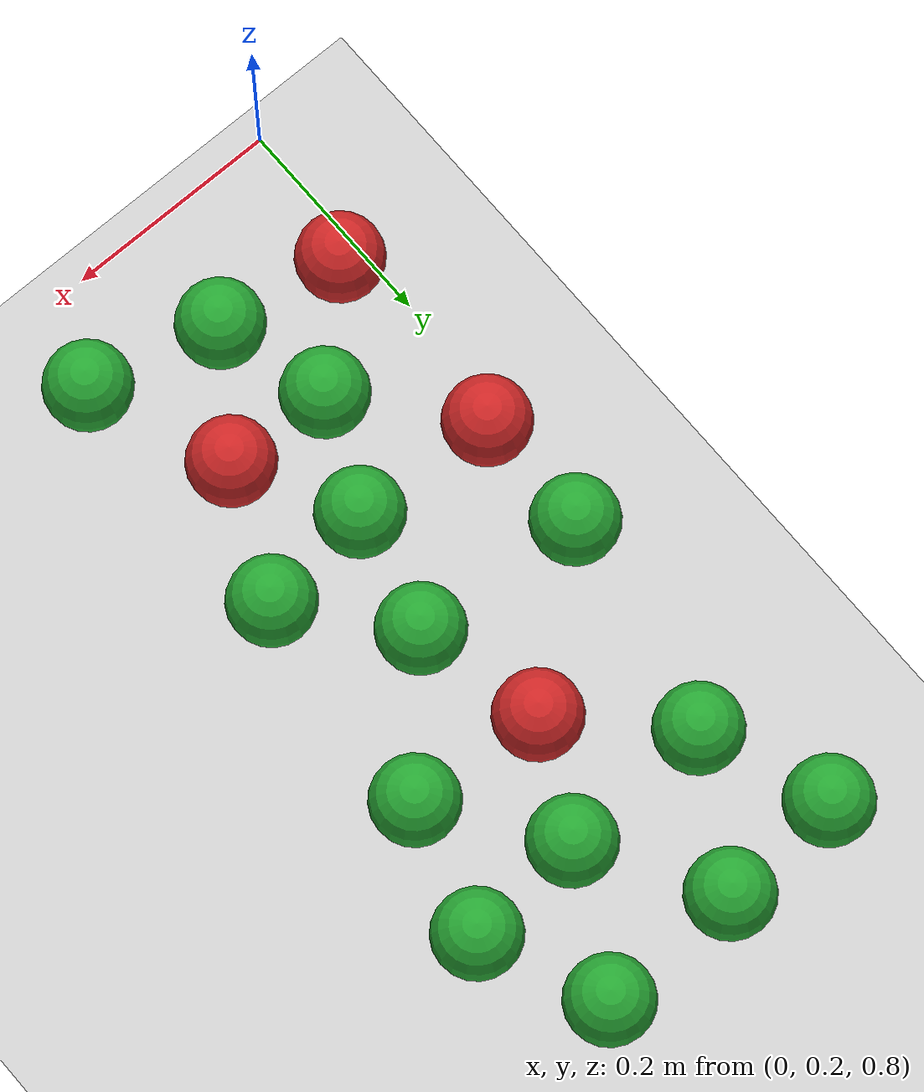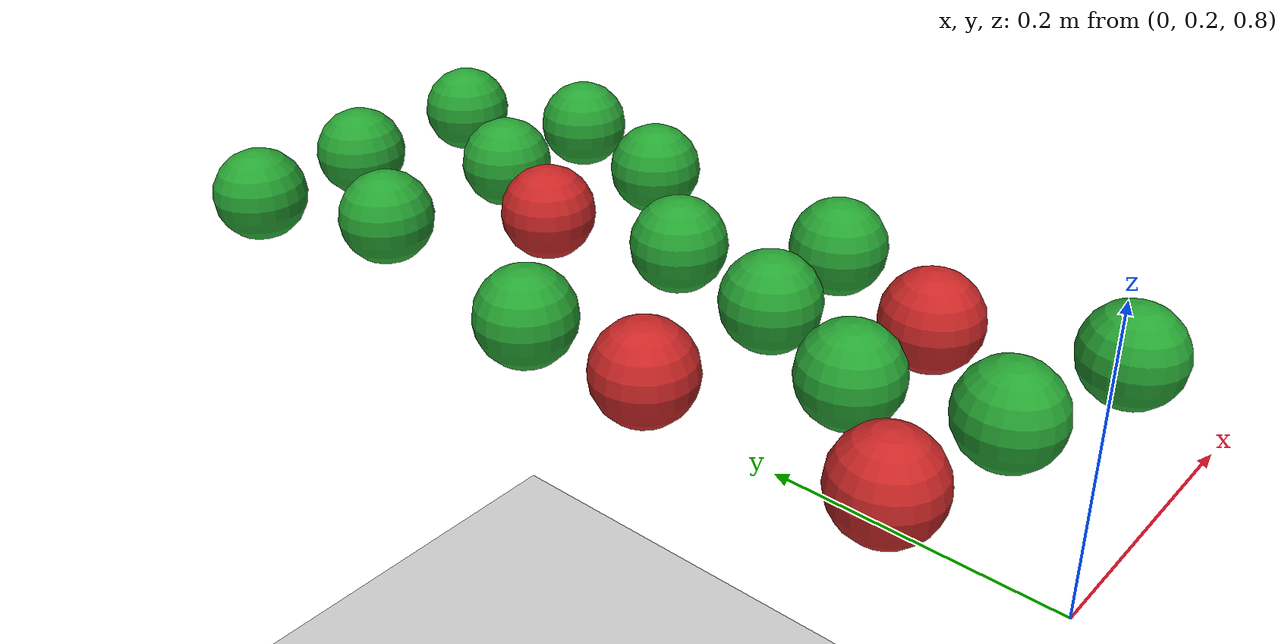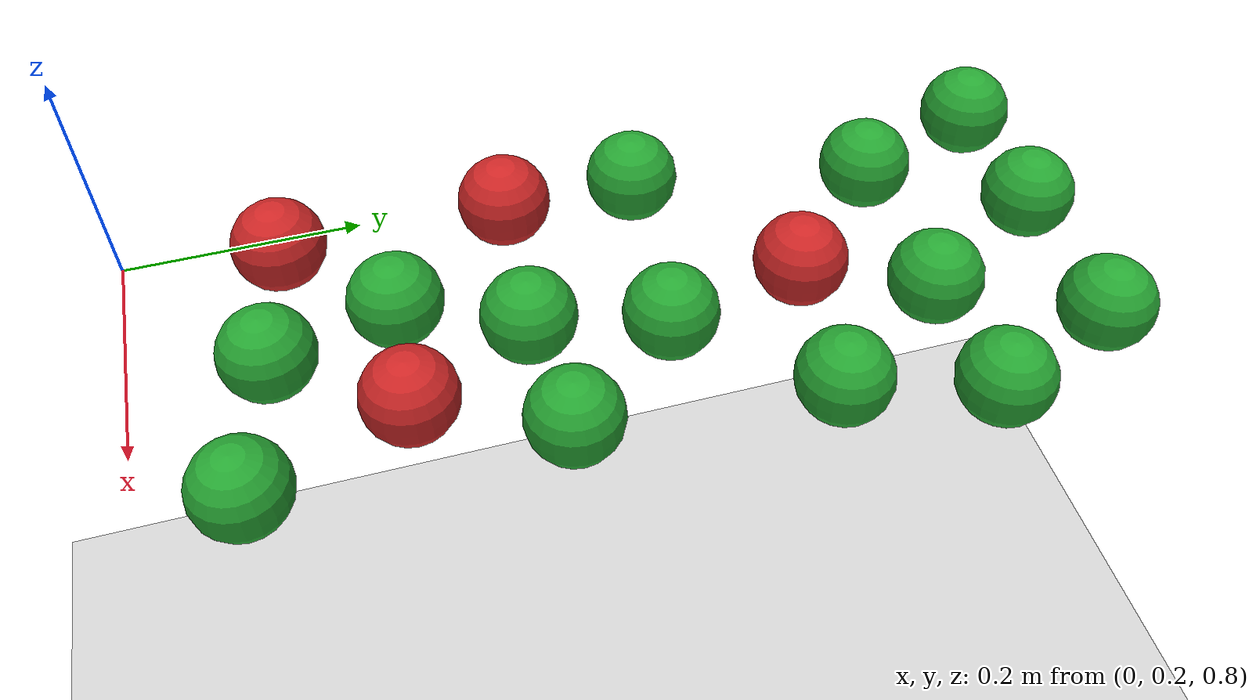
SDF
<sdf version="1.6">
 <world name="default">
  <model name="ground_plane">
   <static>1</static>
   <link name="link">
    <collision name="collision">
     <geometry><plane><normal>0 0 1</normal><size>100 100</size></plane></geometry>
     <surface><friction><ode><mu>100</mu><mu2>50</mu2></ode></friction></surface>
    </collision>
    <visual name="visual">
     <cast_shadows>0</cast_shadows>
     <geometry><plane><normal>0 0 1</normal><size>100 100</size></plane></geometry>
     <material>
      <script><uri>file://media/materials/scripts/gazebo.material</uri><name>Gazebo/Grey</name></script>
     </material>
    </visual>
   </link>
  </model>
  <model name="green_apple_clone_4">
   <link name="link">
    <inertial>
     <mass>1</mass>
     <inertia><ixx>0.1</ixx><ixy>0</ixy><ixz>0</ixz><iyy>0.1</iyy><iyz>0</iyz><izz>0.1</izz></inertia>
    </inertial>
    <visual name="visual">
     <geometry><sphere><radius>0.04</radius></sphere></geometry>
     <material>
      <script><name>Gazebo/Green</name><uri>file://media/materials/scripts/gazebo.material</uri></script>
      <shader type="vertex"><normal_map>__default__</normal_map></shader>
      <ambient>0 1 0 1</ambient>
      <diffuse>0.7 0.7 0.7 1</diffuse>
      <specular>0.01 0.01 0.01 1</specular>
      <emissive>0 0 0 1</emissive>
     </material>
    </visual>
    <collision name="collision">
     <geometry><sphere><radius>0.04</radius></sphere></geometry>
     <surface>
      <friction>
       <ode><mu>1</mu><mu2>1</mu2><fdir1>0 0 0</fdir1><slip1>0</slip1><slip2>0</slip2></ode>
       <torsional>
        <coefficient>1</coefficient>
        <patch_radius>0</patch_radius>
        <surface_radius>0</surface_radius>
        <use_patch_radius>1</use_patch_radius>
        <ode><slip>0</slip></ode>
       </torsional>
      </friction>
      <bounce><restitution_coefficient>0</restitution_coefficient><threshold>1e+06</threshold></bounce>
      <contact>
       <collide_without_contact>0</collide_without_contact>
       <collide_without_contact_bitmask>1</collide_without_contact_bitmask>
       <collide_bitmask>1</collide_bitmask>
       <ode>
        <soft_cfm>0</soft_cfm>
        <soft_erp>0.2</soft_erp>
        <kp>1e+13</kp>
        <kd>1</kd>
        <max_vel>0.01</max_vel>
        <min_depth>0</min_depth>
       </ode>
       <bullet>
        <split_impulse>1</split_impulse>
        <split_impulse_penetration_threshold>-0.01</split_impulse_penetration_threshold>
        <soft_cfm>0</soft_cfm>
        <soft_erp>0.2</soft_erp>
        <kp>1e+13</kp>
        <kd>1</kd>
       </bullet>
      </contact>
     </surface>
    </collision>
   </link>
   <static>0</static>
   <pose>0.016604 0.962257 0.815 0 -0 0</pose>
  </model>
  <model name="green_apple_clone_5">
   <link name="link">
    <inertial>
     <mass>1</mass>
     <inertia><ixx>0.1</ixx><ixy>0</ixy><ixz>0</ixz><iyy>0.1</iyy><iyz>0</iyz><izz>0.1</izz></inertia>
    </inertial>
    <visual name="visual">
     <geometry><sphere><radius>0.04</radius></sphere></geometry>
     <material>
      <script><name>Gazebo/Green</name><uri>file://media/materials/scripts/gazebo.material</uri></script>
      <shader type="vertex"><normal_map>__default__</normal_map></shader>
      <ambient>0 1 0 1</ambient>
      <diffuse>0.7 0.7 0.7 1</diffuse>
      <specular>0.01 0.01 0.01 1</specular>
      <emissive>0 0 0 1</emissive>
     </material>
    </visual>
    <collision name="collision">
     <geometry><sphere><radius>0.04</radius></sphere></geometry>
     <surface>
      <friction>
       <ode><mu>1</mu><mu2>1</mu2><fdir1>0 0 0</fdir1><slip1>0</slip1><slip2>0</slip2></ode>
       <torsional>
        <coefficient>1</coefficient>
        <patch_radius>0</patch_radius>
        <surface_radius>0</surface_radius>
        <use_patch_radius>1</use_patch_radius>
        <ode><slip>0</slip></ode>
       </torsional>
      </friction>
      <bounce><restitution_coefficient>0</restitution_coefficient><threshold>1e+06</threshold></bounce>
      <contact>
       <collide_without_contact>0</collide_without_contact>
       <collide_without_contact_bitmask>1</collide_without_contact_bitmask>
       <collide_bitmask>1</collide_bitmask>
       <ode>
        <soft_cfm>0</soft_cfm>
        <soft_erp>0.2</soft_erp>
        <kp>1e+13</kp>
        <kd>1</kd>
        <max_vel>0.01</max_vel>
        <min_depth>0</min_depth>
       </ode>
       <bullet>
        <split_impulse>1</split_impulse>
        <split_impulse_penetration_threshold>-0.01</split_impulse_penetration_threshold>
        <soft_cfm>0</soft_cfm>
        <soft_erp>0.2</soft_erp>
        <kp>1e+13</kp>
        <kd>1</kd>
       </bullet>
      </contact>
     </surface>
    </collision>
   </link>
   <static>0</static>
   <pose>0.131703 0.968731 0.815 0 -0 0</pose>
  </model>
  <model name="green_apple_clone_6">
   <link name="link">
    <inertial>
     <mass>1</mass>
     <inertia><ixx>0.1</ixx><ixy>0</ixy><ixz>0</ixz><iyy>0.1</iyy><iyz>0</iyz><izz>0.1</izz></inertia>
    </inertial>
    <visual name="visual">
     <geometry><sphere><radius>0.04</radius></sphere></geometry>
     <material>
      <script><name>Gazebo/Green</name><uri>file://media/materials/scripts/gazebo.material</uri></script>
      <shader type="vertex"><normal_map>__default__</normal_map></shader>
      <ambient>0 1 0 1</ambient>
      <diffuse>0.7 0.7 0.7 1</diffuse>
      <specular>0.01 0.01 0.01 1</specular>
      <emissive>0 0 0 1</emissive>
     </material>
    </visual>
    <collision name="collision">
     <geometry><sphere><radius>0.04</radius></sphere></geometry>
     <surface>
      <friction>
       <ode><mu>1</mu><mu2>1</mu2><fdir1>0 0 0</fdir1><slip1>0</slip1><slip2>0</slip2></ode>
       <torsional>
        <coefficient>1</coefficient>
        <patch_radius>0</patch_radius>
        <surface_radius>0</surface_radius>
        <use_patch_radius>1</use_patch_radius>
        <ode><slip>0</slip></ode>
       </torsional>
      </friction>
      <bounce><restitution_coefficient>0</restitution_coefficient><threshold>1e+06</threshold></bounce>
      <contact>
       <collide_without_contact>0</collide_without_contact>
       <collide_without_contact_bitmask>1</collide_without_contact_bitmask>
       <collide_bitmask>1</collide_bitmask>
       <ode>
        <soft_cfm>0</soft_cfm>
        <soft_erp>0.2</soft_erp>
        <kp>1e+13</kp>
        <kd>1</kd>
        <max_vel>0.01</max_vel>
        <min_depth>0</min_depth>
       </ode>
       <bullet>
        <split_impulse>1</split_impulse>
        <split_impulse_penetration_threshold>-0.01</split_impulse_penetration_threshold>
        <soft_cfm>0</soft_cfm>
        <soft_erp>0.2</soft_erp>
        <kp>1e+13</kp>
        <kd>1</kd>
       </bullet>
      </contact>
     </surface>
    </collision>
   </link>
   <static>0</static>
   <pose>0.26638 0.971637 0.815 0 -0 0</pose>
  </model>
  <model name="red_apple_clone_clone_1">
   <link name="link">
    <inertial>
     <mass>1</mass>
     <inertia><ixx>0.1</ixx><ixy>0</ixy><ixz>0</ixz><iyy>0.1</iyy><iyz>0</iyz><izz>0.1</izz></inertia>
    </inertial>
    <visual name="visual">
     <geometry><sphere><radius>0.04</radius></sphere></geometry>
     <material>
      <script><name>Gazebo/Red</name><uri>file://media/materials/scripts/gazebo.material</uri></script>
      <shader type="vertex"><normal_map>__default__</normal_map></shader>
      <ambient>1 0 0 1</ambient>
      <diffuse>0.7 0.7 0.7 1</diffuse>
      <specular>0.01 0.01 0.01 1</specular>
      <emissive>0 0 0 1</emissive>
     </material>
    </visual>
    <collision name="collision">
     <geometry><sphere><radius>0.04</radius></sphere></geometry>
     <surface>
      <friction>
       <ode><mu>1</mu><mu2>1</mu2><fdir1>0 0 0</fdir1><slip1>0</slip1><slip2>0</slip2></ode>
       <torsional>
        <coefficient>1</coefficient>
        <patch_radius>0</patch_radius>
        <surface_radius>0</surface_radius>
        <use_patch_radius>1</use_patch_radius>
        <ode><slip>0</slip></ode>
       </torsional>
      </friction>
      <bounce><restitution_coefficient>0</restitution_coefficient><threshold>1e+06</threshold></bounce>
      <contact>
       <collide_without_contact>0</collide_without_contact>
       <collide_without_contact_bitmask>1</collide_without_contact_bitmask>
       <collide_bitmask>1</collide_bitmask>
       <ode>
        <soft_cfm>0</soft_cfm>
        <soft_erp>0.2</soft_erp>
        <kp>1e+13</kp>
        <kd>1</kd>
        <max_vel>0.01</max_vel>
        <min_depth>0</min_depth>
       </ode>
       <bullet>
        <split_impulse>1</split_impulse>
        <split_impulse_penetration_threshold>-0.01</split_impulse_penetration_threshold>
        <soft_cfm>0</soft_cfm>
        <soft_erp>0.2</soft_erp>
        <kp>1e+13</kp>
        <kd>1</kd>
       </bullet>
      </contact>
     </surface>
    </collision>
   </link>
   <static>0</static>
   <pose>0.018462 0.524832 0.815 0 -0 0</pose>
  </model>
  <model name="red_apple_clone_clone_2">
   <link name="link">
    <inertial>
     <mass>1</mass>
     <inertia><ixx>0.1</ixx><ixy>0</ixy><ixz>0</ixz><iyy>0.1</iyy><iyz>0</iyz><izz>0.1</izz></inertia>
    </inertial>
    <visual name="visual">
     <geometry><sphere><radius>0.04</radius></sphere></geometry>
     <material>
      <script><name>Gazebo/Red</name><uri>file://media/materials/scripts/gazebo.material</uri></script>
      <shader type="vertex"><normal_map>__default__</normal_map></shader>
      <ambient>1 0 0 1</ambient>
      <diffuse>0.7 0.7 0.7 1</diffuse>
      <specular>0.01 0.01 0.01 1</specular>
      <emissive>0 0 0 1</emissive>
     </material>
    </visual>
    <collision name="collision">
     <geometry><sphere><radius>0.04</radius></sphere></geometry>
     <surface>
      <friction>
       <ode><mu>1</mu><mu2>1</mu2><fdir1>0 0 0</fdir1><slip1>0</slip1><slip2>0</slip2></ode>
       <torsional>
        <coefficient>1</coefficient>
        <patch_radius>0</patch_radius>
        <surface_radius>0</surface_radius>
        <use_patch_radius>1</use_patch_radius>
        <ode><slip>0</slip></ode>
       </torsional>
      </friction>
      <bounce><restitution_coefficient>0</restitution_coefficient><threshold>1e+06</threshold></bounce>
      <contact>
       <collide_without_contact>0</collide_without_contact>
       <collide_without_contact_bitmask>1</collide_without_contact_bitmask>
       <collide_bitmask>1</collide_bitmask>
       <ode>
        <soft_cfm>0</soft_cfm>
        <soft_erp>0.2</soft_erp>
        <kp>1e+13</kp>
        <kd>1</kd>
        <max_vel>0.01</max_vel>
        <min_depth>0</min_depth>
       </ode>
       <bullet>
        <split_impulse>1</split_impulse>
        <split_impulse_penetration_threshold>-0.01</split_impulse_penetration_threshold>
        <soft_cfm>0</soft_cfm>
        <soft_erp>0.2</soft_erp>
        <kp>1e+13</kp>
        <kd>1</kd>
       </bullet>
      </contact>
     </surface>
    </collision>
   </link>
   <static>0</static>
   <pose>0.153687 0.749229 0.815 0 -0 0</pose>
  </model>
  <model name="red_apple_clone_clone_3">
   <link name="link">
    <inertial>
     <mass>1</mass>
     <inertia><ixx>0.1</ixx><ixy>0</ixy><ixz>0</ixz><iyy>0.1</iyy><iyz>0</iyz><izz>0.1</izz></inertia>
    </inertial>
    <visual name="visual">
     <geometry><sphere><radius>0.04</radius></sphere></geometry>
     <material>
      <script><name>Gazebo/Red</name><uri>file://media/materials/scripts/gazebo.material</uri></script>
      <shader type="vertex"><normal_map>__default__</normal_map></shader>
      <ambient>1 0 0 1</ambient>
      <diffuse>0.7 0.7 0.7 1</diffuse>
      <specular>0.01 0.01 0.01 1</specular>
      <emissive>0 0 0 1</emissive>
     </material>
    </visual>
    <collision name="collision">
     <geometry><sphere><radius>0.04</radius></sphere></geometry>
     <surface>
      <friction>
       <ode><mu>1</mu><mu2>1</mu2><fdir1>0 0 0</fdir1><slip1>0</slip1><slip2>0</slip2></ode>
       <torsional>
        <coefficient>1</coefficient>
        <patch_radius>0</patch_radius>
        <surface_radius>0</surface_radius>
        <use_patch_radius>1</use_patch_radius>
        <ode><slip>0</slip></ode>
       </torsional>
      </friction>
      <bounce><restitution_coefficient>0</restitution_coefficient><threshold>1e+06</threshold></bounce>
      <contact>
       <collide_without_contact>0</collide_without_contact>
       <collide_without_contact_bitmask>1</collide_without_contact_bitmask>
       <collide_bitmask>1</collide_bitmask>
       <ode>
        <soft_cfm>0</soft_cfm>
        <soft_erp>0.2</soft_erp>
        <kp>1e+13</kp>
        <kd>1</kd>
        <max_vel>0.01</max_vel>
        <min_depth>0</min_depth>
       </ode>
       <bullet>
        <split_impulse>1</split_impulse>
        <split_impulse_penetration_threshold>-0.01</split_impulse_penetration_threshold>
        <soft_cfm>0</soft_cfm>
        <soft_erp>0.2</soft_erp>
        <kp>1e+13</kp>
        <kd>1</kd>
       </bullet>
      </contact>
     </surface>
    </collision>
   </link>
   <static>0</static>
   <pose>0.01934 0.330948 0.815 0 -0 0</pose>
  </model>
  <model name="red_apple_clone_clone_7">
   <link name="link">
    <inertial>
     <mass>1</mass>
     <inertia><ixx>0.1</ixx><ixy>0</ixy><ixz>0</ixz><iyy>0.1</iyy><iyz>0</iyz><izz>0.1</izz></inertia>
    </inertial>
    <visual name="visual">
     <geometry><sphere><radius>0.04</radius></sphere></geometry>
     <material>
      <script><name>Gazebo/Red</name><uri>file://media/materials/scripts/gazebo.material</uri></script>
      <shader type="vertex"><normal_map>__default__</normal_map></shader>
      <ambient>1 0 0 1</ambient>
      <diffuse>0.7 0.7 0.7 1</diffuse>
      <specular>0.01 0.01 0.01 1</specular>
      <emissive>0 0 0 1</emissive>
     </material>
    </visual>
    <collision name="collision">
     <geometry><sphere><radius>0.04</radius></sphere></geometry>
     <surface>
      <friction>
       <ode><mu>1</mu><mu2>1</mu2><fdir1>0 0 0</fdir1><slip1>0</slip1><slip2>0</slip2></ode>
       <torsional>
        <coefficient>1</coefficient>
        <patch_radius>0</patch_radius>
        <surface_radius>0</surface_radius>
        <use_patch_radius>1</use_patch_radius>
        <ode><slip>0</slip></ode>
       </torsional>
      </friction>
      <bounce><restitution_coefficient>0</restitution_coefficient><threshold>1e+06</threshold></bounce>
      <contact>
       <collide_without_contact>0</collide_without_contact>
       <collide_without_contact_bitmask>1</collide_without_contact_bitmask>
       <collide_bitmask>1</collide_bitmask>
       <ode>
        <soft_cfm>0</soft_cfm>
        <soft_erp>0.2</soft_erp>
        <kp>1e+13</kp>
        <kd>1</kd>
        <max_vel>0.01</max_vel>
        <min_depth>0</min_depth>
       </ode>
       <bullet>
        <split_impulse>1</split_impulse>
        <split_impulse_penetration_threshold>-0.01</split_impulse_penetration_threshold>
        <soft_cfm>0</soft_cfm>
        <soft_erp>0.2</soft_erp>
        <kp>1e+13</kp>
        <kd>1</kd>
       </bullet>
      </contact>
     </surface>
    </collision>
   </link>
   <static>0</static>
   <pose>0.20775 0.411852 0.815 0 -0 0</pose>
  </model>
  <model name="green_apple_clone_1_clone_0">
   <link name="link">
    <inertial>
     <mass>1</mass>
     <inertia><ixx>0.1</ixx><ixy>0</ixy><ixz>0</ixz><iyy>0.1</iyy><iyz>0</iyz><izz>0.1</izz></inertia>
    </inertial>
    <visual name="visual">
     <geometry><sphere><radius>0.04</radius></sphere></geometry>
     <material>
      <script><name>Gazebo/Green</name><uri>file://media/materials/scripts/gazebo.material</uri></script>
      <shader type="vertex"><normal_map>__default__</normal_map></shader>
      <ambient>0 1 0 1</ambient>
      <diffuse>0.7 0.7 0.7 1</diffuse>
      <specular>0.01 0.01 0.01 1</specular>
      <emissive>0 0 0 1</emissive>
     </material>
    </visual>
    <collision name="collision">
     <geometry><sphere><radius>0.04</radius></sphere></geometry>
     <surface>
      <friction>
       <ode><mu>1</mu><mu2>1</mu2><fdir1>0 0 0</fdir1><slip1>0</slip1><slip2>0</slip2></ode>
       <torsional>
        <coefficient>1</coefficient>
        <patch_radius>0</patch_radius>
        <surface_radius>0</surface_radius>
        <use_patch_radius>1</use_patch_radius>
        <ode><slip>0</slip></ode>
       </torsional>
      </friction>
      <bounce><restitution_coefficient>0</restitution_coefficient><threshold>1e+06</threshold></bounce>
      <contact>
       <collide_without_contact>0</collide_without_contact>
       <collide_without_contact_bitmask>1</collide_without_contact_bitmask>
       <collide_bitmask>1</collide_bitmask>
       <ode>
        <soft_cfm>0</soft_cfm>
        <soft_erp>0.2</soft_erp>
        <kp>1e+13</kp>
        <kd>1</kd>
        <max_vel>0.01</max_vel>
        <min_depth>0</min_depth>
       </ode>
       <bullet>
        <split_impulse>1</split_impulse>
        <split_impulse_penetration_threshold>-0.01</split_impulse_penetration_threshold>
        <soft_cfm>0</soft_cfm>
        <soft_erp>0.2</soft_erp>
        <kp>1e+13</kp>
        <kd>1</kd>
       </bullet>
      </contact>
     </surface>
    </collision>
   </link>
   <static>0</static>
   <pose>0.058794 0.845067 0.815 0 -0 0</pose>
  </model>
  <model name="green_apple_clone_1_clone_1">
   <link name="link">
    <inertial>
     <mass>1</mass>
     <inertia><ixx>0.1</ixx><ixy>0</ixy><ixz>0</ixz><iyy>0.1</iyy><iyz>0</iyz><izz>0.1</izz></inertia>
    </inertial>
    <visual name="visual">
     <geometry><sphere><radius>0.04</radius></sphere></geometry>
     <material>
      <script><name>Gazebo/Green</name><uri>file://media/materials/scripts/gazebo.material</uri></script>
      <shader type="vertex"><normal_map>__default__</normal_map></shader>
      <ambient>0 1 0 1</ambient>
      <diffuse>0.7 0.7 0.7 1</diffuse>
      <specular>0.01 0.01 0.01 1</specular>
      <emissive>0 0 0 1</emissive>
     </material>
    </visual>
    <collision name="collision">
     <geometry><sphere><radius>0.04</radius></sphere></geometry>
     <surface>
      <friction>
       <ode><mu>1</mu><mu2>1</mu2><fdir1>0 0 0</fdir1><slip1>0</slip1><slip2>0</slip2></ode>
       <torsional>
        <coefficient>1</coefficient>
        <patch_radius>0</patch_radius>
        <surface_radius>0</surface_radius>
        <use_patch_radius>1</use_patch_radius>
        <ode><slip>0</slip></ode>
       </torsional>
      </friction>
      <bounce><restitution_coefficient>0</restitution_coefficient><threshold>1e+06</threshold></bounce>
      <contact>
       <collide_without_contact>0</collide_without_contact>
       <collide_without_contact_bitmask>1</collide_without_contact_bitmask>
       <collide_bitmask>1</collide_bitmask>
       <ode>
        <soft_cfm>0</soft_cfm>
        <soft_erp>0.2</soft_erp>
        <kp>1e+13</kp>
        <kd>1</kd>
        <max_vel>0.01</max_vel>
        <min_depth>0</min_depth>
       </ode>
       <bullet>
        <split_impulse>1</split_impulse>
        <split_impulse_penetration_threshold>-0.01</split_impulse_penetration_threshold>
        <soft_cfm>0</soft_cfm>
        <soft_erp>0.2</soft_erp>
        <kp>1e+13</kp>
        <kd>1</kd>
       </bullet>
      </contact>
     </surface>
    </collision>
   </link>
   <static>0</static>
   <pose>0.20237 0.849751 0.815 0 -0 0</pose>
  </model>
  <model name="green_apple_clone_1_clone_2">
   <link name="link">
    <inertial>
     <mass>1</mass>
     <inertia><ixx>0.1</ixx><ixy>0</ixy><ixz>0</ixz><iyy>0.1</iyy><iyz>0</iyz><izz>0.1</izz></inertia>
    </inertial>
    <visual name="visual">
     <geometry><sphere><radius>0.04</radius></sphere></geometry>
     <material>
      <script><name>Gazebo/Green</name><uri>file://media/materials/scripts/gazebo.material</uri></script>
      <shader type="vertex"><normal_map>__default__</normal_map></shader>
      <ambient>0 1 0 1</ambient>
      <diffuse>0.7 0.7 0.7 1</diffuse>
      <specular>0.01 0.01 0.01 1</specular>
      <emissive>0 0 0 1</emissive>
     </material>
    </visual>
    <collision name="collision">
     <geometry><sphere><radius>0.04</radius></sphere></geometry>
     <surface>
      <friction>
       <ode><mu>1</mu><mu2>1</mu2><fdir1>0 0 0</fdir1><slip1>0</slip1><slip2>0</slip2></ode>
       <torsional>
        <coefficient>1</coefficient>
        <patch_radius>0</patch_radius>
        <surface_radius>0</surface_radius>
        <use_patch_radius>1</use_patch_radius>
        <ode><slip>0</slip></ode>
       </torsional>
      </friction>
      <bounce><restitution_coefficient>0</restitution_coefficient><threshold>1e+06</threshold></bounce>
      <contact>
       <collide_without_contact>0</collide_without_contact>
       <collide_without_contact_bitmask>1</collide_without_contact_bitmask>
       <collide_bitmask>1</collide_bitmask>
       <ode>
        <soft_cfm>0</soft_cfm>
        <soft_erp>0.2</soft_erp>
        <kp>1e+13</kp>
        <kd>1</kd>
        <max_vel>0.01</max_vel>
        <min_depth>0</min_depth>
       </ode>
       <bullet>
        <split_impulse>1</split_impulse>
        <split_impulse_penetration_threshold>-0.01</split_impulse_penetration_threshold>
        <soft_cfm>0</soft_cfm>
        <soft_erp>0.2</soft_erp>
        <kp>1e+13</kp>
        <kd>1</kd>
       </bullet>
      </contact>
     </surface>
    </collision>
   </link>
   <static>0</static>
   <pose>0.31379 0.858583 0.815 0 -0 0</pose>
  </model>
  <model name="green_apple_clone_1_clone_5">
   <link name="link">
    <inertial>
     <mass>1</mass>
     <inertia><ixx>0.1</ixx><ixy>0</ixy><ixz>0</ixz><iyy>0.1</iyy><iyz>0</iyz><izz>0.1</izz></inertia>
    </inertial>
    <visual name="visual">
     <geometry><sphere><radius>0.04</radius></sphere></geometry>
     <material>
      <script><name>Gazebo/Green</name><uri>file://media/materials/scripts/gazebo.material</uri></script>
      <shader type="vertex"><normal_map>__default__</normal_map></shader>
      <ambient>0 1 0 1</ambient>
      <diffuse>0.7 0.7 0.7 1</diffuse>
      <specular>0.01 0.01 0.01 1</specular>
      <emissive>0 0 0 1</emissive>
     </material>
    </visual>
    <collision name="collision">
     <geometry><sphere><radius>0.04</radius></sphere></geometry>
     <surface>
      <friction>
       <ode><mu>1</mu><mu2>1</mu2><fdir1>0 0 0</fdir1><slip1>0</slip1><slip2>0</slip2></ode>
       <torsional>
        <coefficient>1</coefficient>
        <patch_radius>0</patch_radius>
        <surface_radius>0</surface_radius>
        <use_patch_radius>1</use_patch_radius>
        <ode><slip>0</slip></ode>
       </torsional>
      </friction>
      <bounce><restitution_coefficient>0</restitution_coefficient><threshold>1e+06</threshold></bounce>
      <contact>
       <collide_without_contact>0</collide_without_contact>
       <collide_without_contact_bitmask>1</collide_without_contact_bitmask>
       <collide_bitmask>1</collide_bitmask>
       <ode>
        <soft_cfm>0</soft_cfm>
        <soft_erp>0.2</soft_erp>
        <kp>1e+13</kp>
        <kd>1</kd>
        <max_vel>0.01</max_vel>
        <min_depth>0</min_depth>
       </ode>
       <bullet>
        <split_impulse>1</split_impulse>
        <split_impulse_penetration_threshold>-0.01</split_impulse_penetration_threshold>
        <soft_cfm>0</soft_cfm>
        <soft_erp>0.2</soft_erp>
        <kp>1e+13</kp>
        <kd>1</kd>
       </bullet>
      </contact>
     </surface>
    </collision>
   </link>
   <static>0</static>
   <pose>0.279657 0.738712 0.815 0 -0 0</pose>
  </model>
  <model name="green_apple_clone_1_clone_8">
   <link name="link">
    <inertial>
     <mass>1</mass>
     <inertia><ixx>0.1</ixx><ixy>0</ixy><ixz>0</ixz><iyy>0.1</iyy><iyz>0</iyz><izz>0.1</izz></inertia>
    </inertial>
    <visual name="visual">
     <geometry><sphere><radius>0.04</radius></sphere></geometry>
     <material>
      <script><name>Gazebo/Green</name><uri>file://media/materials/scripts/gazebo.material</uri></script>
      <shader type="vertex"><normal_map>__default__</normal_map></shader>
      <ambient>0 1 0 1</ambient>
      <diffuse>0.7 0.7 0.7 1</diffuse>
      <specular>0.01 0.01 0.01 1</specular>
      <emissive>0 0 0 1</emissive>
     </material>
    </visual>
    <collision name="collision">
     <geometry><sphere><radius>0.04</radius></sphere></geometry>
     <surface>
      <friction>
       <ode><mu>1</mu><mu2>1</mu2><fdir1>0 0 0</fdir1><slip1>0</slip1><slip2>0</slip2></ode>
       <torsional>
        <coefficient>1</coefficient>
        <patch_radius>0</patch_radius>
        <surface_radius>0</surface_radius>
        <use_patch_radius>1</use_patch_radius>
        <ode><slip>0</slip></ode>
       </torsional>
      </friction>
      <bounce><restitution_coefficient>0</restitution_coefficient><threshold>1e+06</threshold></bounce>
      <contact>
       <collide_without_contact>0</collide_without_contact>
       <collide_without_contact_bitmask>1</collide_without_contact_bitmask>
       <collide_bitmask>1</collide_bitmask>
       <ode>
        <soft_cfm>0</soft_cfm>
        <soft_erp>0.2</soft_erp>
        <kp>1e+13</kp>
        <kd>1</kd>
        <max_vel>0.01</max_vel>
        <min_depth>0</min_depth>
       </ode>
       <bullet>
        <split_impulse>1</split_impulse>
        <split_impulse_penetration_threshold>-0.01</split_impulse_penetration_threshold>
        <soft_cfm>0</soft_cfm>
        <soft_erp>0.2</soft_erp>
        <kp>1e+13</kp>
        <kd>1</kd>
       </bullet>
      </contact>
     </surface>
    </collision>
   </link>
   <static>0</static>
   <pose>0.018694 0.640054 0.815 0 -0 0</pose>
  </model>
  <model name="green_apple_clone_1_clone_9">
   <link name="link">
    <inertial>
     <mass>1</mass>
     <inertia><ixx>0.1</ixx><ixy>0</ixy><ixz>0</ixz><iyy>0.1</iyy><iyz>0</iyz><izz>0.1</izz></inertia>
    </inertial>
    <visual name="visual">
     <geometry><sphere><radius>0.04</radius></sphere></geometry>
     <material>
      <script><name>Gazebo/Green</name><uri>file://media/materials/scripts/gazebo.material</uri></script>
      <shader type="vertex"><normal_map>__default__</normal_map></shader>
      <ambient>0 1 0 1</ambient>
      <diffuse>0.7 0.7 0.7 1</diffuse>
      <specular>0.01 0.01 0.01 1</specular>
      <emissive>0 0 0 1</emissive>
     </material>
    </visual>
    <collision name="collision">
     <geometry><sphere><radius>0.04</radius></sphere></geometry>
     <surface>
      <friction>
       <ode><mu>1</mu><mu2>1</mu2><fdir1>0 0 0</fdir1><slip1>0</slip1><slip2>0</slip2></ode>
       <torsional>
        <coefficient>1</coefficient>
        <patch_radius>0</patch_radius>
        <surface_radius>0</surface_radius>
        <use_patch_radius>1</use_patch_radius>
        <ode><slip>0</slip></ode>
       </torsional>
      </friction>
      <bounce><restitution_coefficient>0</restitution_coefficient><threshold>1e+06</threshold></bounce>
      <contact>
       <collide_without_contact>0</collide_without_contact>
       <collide_without_contact_bitmask>1</collide_without_contact_bitmask>
       <collide_bitmask>1</collide_bitmask>
       <ode>
        <soft_cfm>0</soft_cfm>
        <soft_erp>0.2</soft_erp>
        <kp>1e+13</kp>
        <kd>1</kd>
        <max_vel>0.01</max_vel>
        <min_depth>0</min_depth>
       </ode>
       <bullet>
        <split_impulse>1</split_impulse>
        <split_impulse_penetration_threshold>-0.01</split_impulse_penetration_threshold>
        <soft_cfm>0</soft_cfm>
        <soft_erp>0.2</soft_erp>
        <kp>1e+13</kp>
        <kd>1</kd>
       </bullet>
      </contact>
     </surface>
    </collision>
   </link>
   <static>0</static>
   <pose>0.180147 0.628426 0.815 0 -0 0</pose>
  </model>
  <model name="green_apple_clone_1_clone_13">
   <link name="link">
    <inertial>
     <mass>1</mass>
     <inertia><ixx>0.1</ixx><ixy>0</ixy><ixz>0</ixz><iyy>0.1</iyy><iyz>0</iyz><izz>0.1</izz></inertia>
    </inertial>
    <visual name="visual">
     <geometry><sphere><radius>0.04</radius></sphere></geometry>
     <material>
      <script><name>Gazebo/Green</name><uri>file://media/materials/scripts/gazebo.material</uri></script>
      <shader type="vertex"><normal_map>__default__</normal_map></shader>
      <ambient>0 1 0 1</ambient>
      <diffuse>0.7 0.7 0.7 1</diffuse>
      <specular>0.01 0.01 0.01 1</specular>
      <emissive>0 0 0 1</emissive>
     </material>
    </visual>
    <collision name="collision">
     <geometry><sphere><radius>0.04</radius></sphere></geometry>
     <surface>
      <friction>
       <ode><mu>1</mu><mu2>1</mu2><fdir1>0 0 0</fdir1><slip1>0</slip1><slip2>0</slip2></ode>
       <torsional>
        <coefficient>1</coefficient>
        <patch_radius>0</patch_radius>
        <surface_radius>0</surface_radius>
        <use_patch_radius>1</use_patch_radius>
        <ode><slip>0</slip></ode>
       </torsional>
      </friction>
      <bounce><restitution_coefficient>0</restitution_coefficient><threshold>1e+06</threshold></bounce>
      <contact>
       <collide_without_contact>0</collide_without_contact>
       <collide_without_contact_bitmask>1</collide_without_contact_bitmask>
       <collide_bitmask>1</collide_bitmask>
       <ode>
        <soft_cfm>0</soft_cfm>
        <soft_erp>0.2</soft_erp>
        <kp>1e+13</kp>
        <kd>1</kd>
        <max_vel>0.01</max_vel>
        <min_depth>0</min_depth>
       </ode>
       <bullet>
        <split_impulse>1</split_impulse>
        <split_impulse_penetration_threshold>-0.01</split_impulse_penetration_threshold>
        <soft_cfm>0</soft_cfm>
        <soft_erp>0.2</soft_erp>
        <kp>1e+13</kp>
        <kd>1</kd>
       </bullet>
      </contact>
     </surface>
    </collision>
   </link>
   <static>0</static>
   <pose>0.153304 0.517062 0.815 0 -0 0</pose>
  </model>
  <model name="green_apple_clone_1_clone_14">
   <link name="link">
    <inertial>
     <mass>1</mass>
     <inertia><ixx>0.1</ixx><ixy>0</ixy><ixz>0</ixz><iyy>0.1</iyy><iyz>0</iyz><izz>0.1</izz></inertia>
    </inertial>
    <visual name="visual">
     <geometry><sphere><radius>0.04</radius></sphere></geometry>
     <material>
      <script><name>Gazebo/Green</name><uri>file://media/materials/scripts/gazebo.material</uri></script>
      <shader type="vertex"><normal_map>__default__</normal_map></shader>
      <ambient>0 1 0 1</ambient>
      <diffuse>0.7 0.7 0.7 1</diffuse>
      <specular>0.01 0.01 0.01 1</specular>
      <emissive>0 0 0 1</emissive>
     </material>
    </visual>
    <collision name="collision">
     <geometry><sphere><radius>0.04</radius></sphere></geometry>
     <surface>
      <friction>
       <ode><mu>1</mu><mu2>1</mu2><fdir1>0 0 0</fdir1><slip1>0</slip1><slip2>0</slip2></ode>
       <torsional>
        <coefficient>1</coefficient>
        <patch_radius>0</patch_radius>
        <surface_radius>0</surface_radius>
        <use_patch_radius>1</use_patch_radius>
        <ode><slip>0</slip></ode>
       </torsional>
      </friction>
      <bounce><restitution_coefficient>0</restitution_coefficient><threshold>1e+06</threshold></bounce>
      <contact>
       <collide_without_contact>0</collide_without_contact>
       <collide_without_contact_bitmask>1</collide_without_contact_bitmask>
       <collide_bitmask>1</collide_bitmask>
       <ode>
        <soft_cfm>0</soft_cfm>
        <soft_erp>0.2</soft_erp>
        <kp>1e+13</kp>
        <kd>1</kd>
        <max_vel>0.01</max_vel>
        <min_depth>0</min_depth>
       </ode>
       <bullet>
        <split_impulse>1</split_impulse>
        <split_impulse_penetration_threshold>-0.01</split_impulse_penetration_threshold>
        <soft_cfm>0</soft_cfm>
        <soft_erp>0.2</soft_erp>
        <kp>1e+13</kp>
        <kd>1</kd>
       </bullet>
      </contact>
     </surface>
    </collision>
   </link>
   <static>0</static>
   <pose>0.260364 0.528637 0.815 0 -0 0</pose>
  </model>
  <model name="green_apple_clone_1_clone_17">
   <link name="link">
    <inertial>
     <mass>1</mass>
     <inertia><ixx>0.1</ixx><ixy>0</ixy><ixz>0</ixz><iyy>0.1</iyy><iyz>0</iyz><izz>0.1</izz></inertia>
    </inertial>
    <visual name="visual">
     <geometry><sphere><radius>0.04</radius></sphere></geometry>
     <material>
      <script><name>Gazebo/Green</name><uri>file://media/materials/scripts/gazebo.material</uri></script>
      <shader type="vertex"><normal_map>__default__</normal_map></shader>
      <ambient>0 1 0 1</ambient>
      <diffuse>0.7 0.7 0.7 1</diffuse>
      <specular>0.01 0.01 0.01 1</specular>
      <emissive>0 0 0 1</emissive>
     </material>
    </visual>
    <collision name="collision">
     <geometry><sphere><radius>0.04</radius></sphere></geometry>
     <surface>
      <friction>
       <ode><mu>1</mu><mu2>1</mu2><fdir1>0 0 0</fdir1><slip1>0</slip1><slip2>0</slip2></ode>
       <torsional>
        <coefficient>1</coefficient>
        <patch_radius>0</patch_radius>
        <surface_radius>0</surface_radius>
        <use_patch_radius>1</use_patch_radius>
        <ode><slip>0</slip></ode>
       </torsional>
      </friction>
      <bounce><restitution_coefficient>0</restitution_coefficient><threshold>1e+06</threshold></bounce>
      <contact>
       <collide_without_contact>0</collide_without_contact>
       <collide_without_contact_bitmask>1</collide_without_contact_bitmask>
       <collide_bitmask>1</collide_bitmask>
       <ode>
        <soft_cfm>0</soft_cfm>
        <soft_erp>0.2</soft_erp>
        <kp>1e+13</kp>
        <kd>1</kd>
        <max_vel>0.01</max_vel>
        <min_depth>0</min_depth>
       </ode>
       <bullet>
        <split_impulse>1</split_impulse>
        <split_impulse_penetration_threshold>-0.01</split_impulse_penetration_threshold>
        <soft_cfm>0</soft_cfm>
        <soft_erp>0.2</soft_erp>
        <kp>1e+13</kp>
        <kd>1</kd>
       </bullet>
      </contact>
     </surface>
    </collision>
   </link>
   <static>0</static>
   <pose>0.107805 0.416119 0.815 0 -0 0</pose>
  </model>
  <model name="green_apple_clone_1_clone_21">
   <link name="link">
    <inertial>
     <mass>1</mass>
     <inertia><ixx>0.1</ixx><ixy>0</ixy><ixz>0</ixz><iyy>0.1</iyy><iyz>0</iyz><izz>0.1</izz></inertia>
    </inertial>
    <visual name="visual">
     <geometry><sphere><radius>0.04</radius></sphere></geometry>
     <material>
      <script><name>Gazebo/Green</name><uri>file://media/materials/scripts/gazebo.material</uri></script>
      <shader type="vertex"><normal_map>__default__</normal_map></shader>
      <ambient>0 1 0 1</ambient>
      <diffuse>0.7 0.7 0.7 1</diffuse>
      <specular>0.01 0.01 0.01 1</specular>
      <emissive>0 0 0 1</emissive>
     </material>
    </visual>
    <collision name="collision">
     <geometry><sphere><radius>0.04</radius></sphere></geometry>
     <surface>
      <friction>
       <ode><mu>1</mu><mu2>1</mu2><fdir1>0 0 0</fdir1><slip1>0</slip1><slip2>0</slip2></ode>
       <torsional>
        <coefficient>1</coefficient>
        <patch_radius>0</patch_radius>
        <surface_radius>0</surface_radius>
        <use_patch_radius>1</use_patch_radius>
        <ode><slip>0</slip></ode>
       </torsional>
      </friction>
      <bounce><restitution_coefficient>0</restitution_coefficient><threshold>1e+06</threshold></bounce>
      <contact>
       <collide_without_contact>0</collide_without_contact>
       <collide_without_contact_bitmask>1</collide_without_contact_bitmask>
       <collide_bitmask>1</collide_bitmask>
       <ode>
        <soft_cfm>0</soft_cfm>
        <soft_erp>0.2</soft_erp>
        <kp>1e+13</kp>
        <kd>1</kd>
        <max_vel>0.01</max_vel>
        <min_depth>0</min_depth>
       </ode>
       <bullet>
        <split_impulse>1</split_impulse>
        <split_impulse_penetration_threshold>-0.01</split_impulse_penetration_threshold>
        <soft_cfm>0</soft_cfm>
        <soft_erp>0.2</soft_erp>
        <kp>1e+13</kp>
        <kd>1</kd>
       </bullet>
      </contact>
     </surface>
    </collision>
   </link>
   <static>0</static>
   <pose>0.136129 0.310687 0.815 0 -0 0</pose>
  </model>
  <model name="green_apple_clone_1_clone_22">
   <link name="link">
    <inertial>
     <mass>1</mass>
     <inertia><ixx>0.1</ixx><ixy>0</ixy><ixz>0</ixz><iyy>0.1</iyy><iyz>0</iyz><izz>0.1</izz></inertia>
    </inertial>
    <visual name="visual">
     <geometry><sphere><radius>0.04</radius></sphere></geometry>
     <material>
      <script><name>Gazebo/Green</name><uri>file://media/materials/scripts/gazebo.material</uri></script>
      <shader type="vertex"><normal_map>__default__</normal_map></shader>
      <ambient>0 1 0 1</ambient>
      <diffuse>0.7 0.7 0.7 1</diffuse>
      <specular>0.01 0.01 0.01 1</specular>
      <emissive>0 0 0 1</emissive>
     </material>
    </visual>
    <collision name="collision">
     <geometry><sphere><radius>0.04</radius></sphere></geometry>
     <surface>
      <friction>
       <ode><mu>1</mu><mu2>1</mu2><fdir1>0 0 0</fdir1><slip1>0</slip1><slip2>0</slip2></ode>
       <torsional>
        <coefficient>1</coefficient>
        <patch_radius>0</patch_radius>
        <surface_radius>0</surface_radius>
        <use_patch_radius>1</use_patch_radius>
        <ode><slip>0</slip></ode>
       </torsional>
      </friction>
      <bounce><restitution_coefficient>0</restitution_coefficient><threshold>1e+06</threshold></bounce>
      <contact>
       <collide_without_contact>0</collide_without_contact>
       <collide_without_contact_bitmask>1</collide_without_contact_bitmask>
       <collide_bitmask>1</collide_bitmask>
       <ode>
        <soft_cfm>0</soft_cfm>
        <soft_erp>0.2</soft_erp>
        <kp>1e+13</kp>
        <kd>1</kd>
        <max_vel>0.01</max_vel>
        <min_depth>0</min_depth>
       </ode>
       <bullet>
        <split_impulse>1</split_impulse>
        <split_impulse_penetration_threshold>-0.01</split_impulse_penetration_threshold>
        <soft_cfm>0</soft_cfm>
        <soft_erp>0.2</soft_erp>
        <kp>1e+13</kp>
        <kd>1</kd>
       </bullet>
      </contact>
     </surface>
    </collision>
   </link>
   <static>0</static>
   <pose>0.257851 0.280796 0.815 0 -0 0</pose>
  </model>
 </world>
</sdf>
